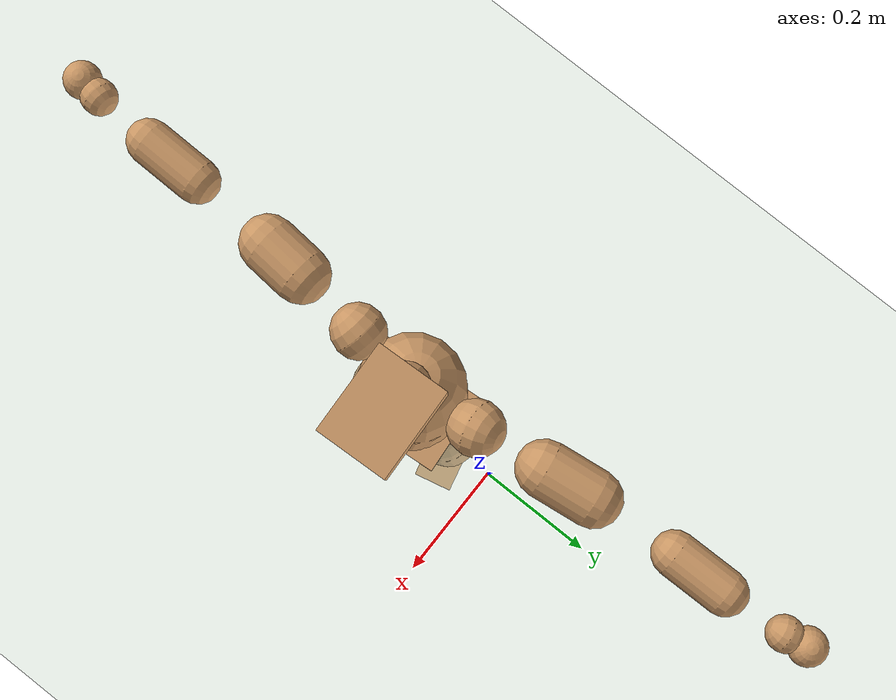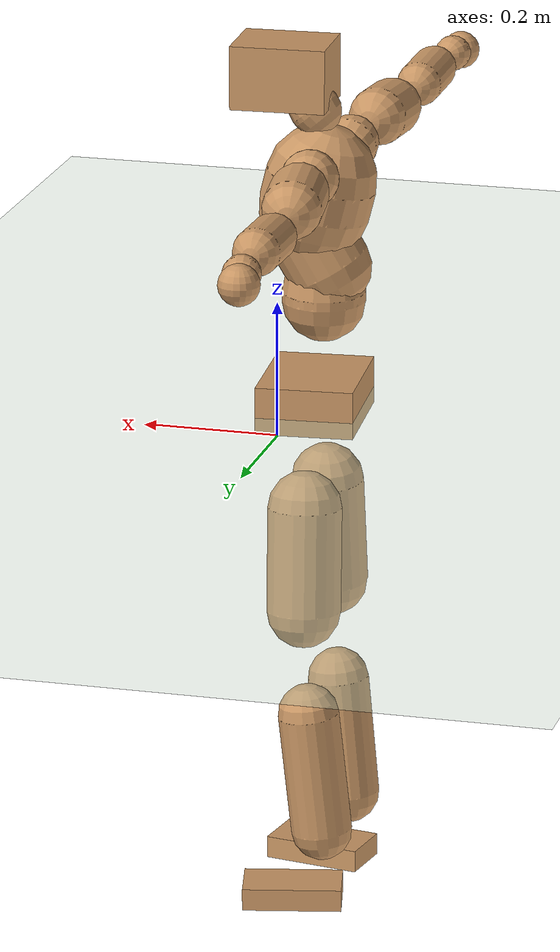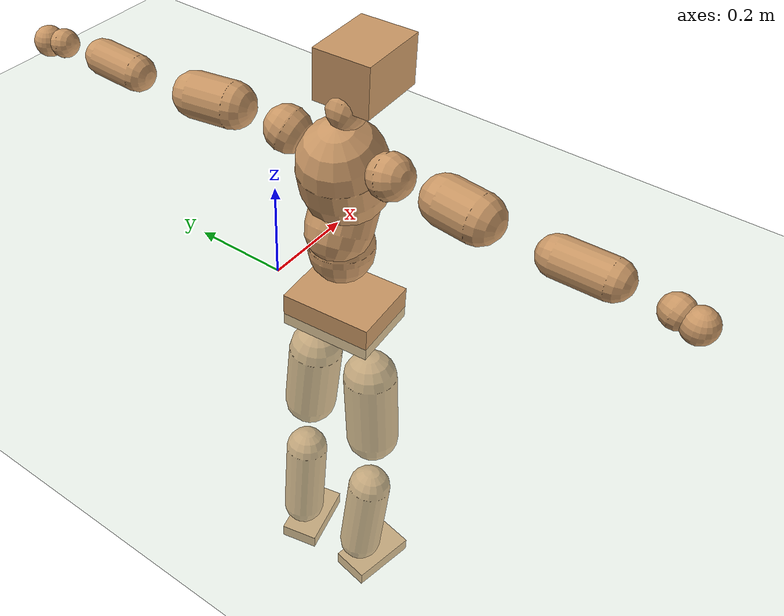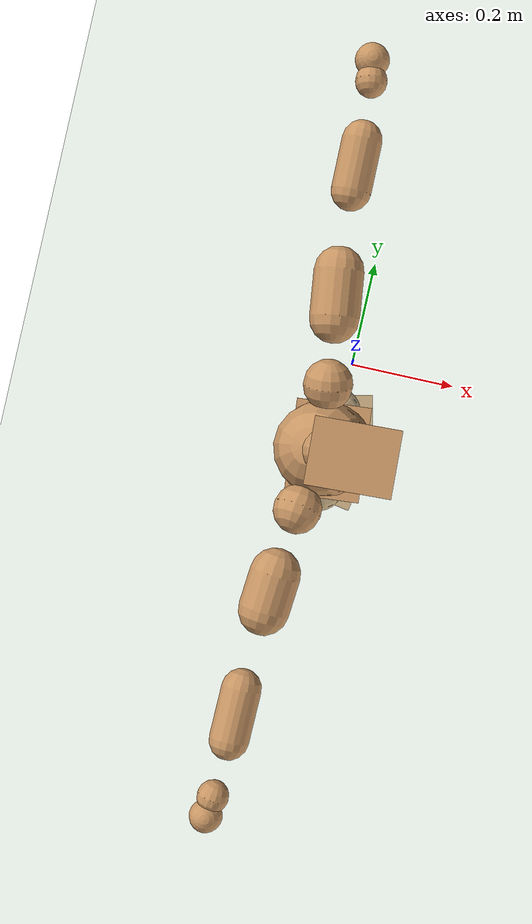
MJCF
<mujoco model="humanoid">
  <compiler coordinate="local" angle="radian"/>
  <default>
    <joint damping="0.0" armature="0.01" stiffness="0.0" limited="true"/>
    <geom conaffinity="1" condim="3" contype="7" margin="0.001" rgba="0.8 0.6 .4 1"/>
  </default>
  <asset>
    <texture type="skybox" builtin="gradient" rgb1=".4 .5 .6" rgb2="0 0 0" width="100" height="100"/>
    <texture builtin="flat" height="1278" mark="cross" markrgb="1 1 1" name="texgeom" random="0.01" rgb1="0.8 0.6 0.4" rgb2="0.8 0.6 0.4" type="cube" width="127"/>
    <texture builtin="checker" height="100" name="texplane" rgb1="0 0 0" rgb2="0.8 0.8 0.8" type="2d" width="100"/>
    <material name="MatPlane" reflectance="0.5" shininess="1" specular="1" texrepeat="60 60" texture="texplane"/>
    <material name="geom" texture="texgeom" texuniform="true"/>
  </asset>
  <worldbody>
    <light cutoff="100" diffuse="1 1 1" dir="-0 0 -1.3" directional="true" exponent="1" pos="0 0 1.3" specular=".1 .1 .1"/>
    <geom conaffinity="1" condim="3" name="floor" pos="0 0 0" rgba="0.8 0.9 0.8 1" size="100 100 .2" type="plane" material="MatPlane"/>
    <body name="Pelvis" pos="-0.0044 -0.1736 0.0198">
      <freejoint name="Pelvis"/>
      <geom type="box" contype="1" conaffinity="1" density="5359.375331" pos="-0.0050 -0.0004 -0.0112" size="0.0724 0.0921 0.0355" quat="0.9992 0.0000 0.0000 0.0401" name="Pelvis"/>
      <body name="L_Hip" pos="-0.0069 0.0602 -0.0785">
        <joint name="L_Hip_x" type="hinge" pos="0 0 0" axis="1 0 0" stiffness="1600" damping="160" armature="0.02" range="-180.0000 180.0000"/>
        <joint name="L_Hip_y" type="hinge" pos="0 0 0" axis="0 1 0" stiffness="1600" damping="160" armature="0.02" range="-180.0000 180.0000"/>
        <joint name="L_Hip_z" type="hinge" pos="0 0 0" axis="0 0 1" stiffness="1600" damping="160" armature="0.02" range="-180.0000 180.0000"/>
        <geom type="capsule" contype="1" conaffinity="1" density="2040.816327" size="0.0548" fromto="-0.0009 0.0072 -0.0845 -0.0027 0.0206 -0.2412" name="L_Hip"/>
        <body name="L_Knee" pos="-0.0036 0.0279 -0.3257">
          <joint name="L_Knee_x" type="hinge" pos="0 0 0" axis="1 0 0" stiffness="1600" damping="160" armature="0.02" range="-180.0000 180.0000"/>
          <joint name="L_Knee_y" type="hinge" pos="0 0 0" axis="0 1 0" stiffness="1600" damping="160" armature="0.02" range="-180.0000 180.0000"/>
          <joint name="L_Knee_z" type="hinge" pos="0 0 0" axis="0 0 1" stiffness="1600" damping="160" armature="0.02" range="-180.0000 180.0000"/>
          <geom type="capsule" contype="1" conaffinity="1" density="1234.567901" size="0.0457" fromto="-0.0078 -0.0019 -0.0753 -0.0269 -0.0065 -0.2585" name="L_Knee"/>
          <body name="L_Ankle" pos="-0.0348 -0.0084 -0.3338">
            <joint name="L_Ankle_x" type="hinge" pos="0 0 0" axis="1 0 0" stiffness="1600" damping="160" armature="0.02" range="-180.0000 180.0000"/>
            <joint name="L_Ankle_y" type="hinge" pos="0 0 0" axis="0 1 0" stiffness="1600" damping="160" armature="0.02" range="-180.0000 180.0000"/>
            <joint name="L_Ankle_z" type="hinge" pos="0 0 0" axis="0 0 1" stiffness="1600" damping="160" armature="0.02" range="-180.0000 180.0000"/>
            <geom type="box" contype="1" conaffinity="1" density="1000.000038" pos="0.0501 0.0114 -0.0238" size="0.0738 0.0417 0.0166" quat="0.9938 0.0000 0.0000 0.1116" name="L_Ankle"/>
            <body name="L_Toe" pos="0.1001 0.0228 -0.0475">
              <joint name="L_Toe_x" type="hinge" pos="0 0 0" axis="1 0 0" stiffness="1000" damping="100" armature="0.02" range="-180.0000 180.0000"/>
              <joint name="L_Toe_y" type="hinge" pos="0 0 0" axis="0 1 0" stiffness="1000" damping="100" armature="0.02" range="-180.0000 180.0000"/>
              <joint name="L_Toe_z" type="hinge" pos="0 0 0" axis="0 0 1" stiffness="1000" damping="100" armature="0.02" range="-180.0000 180.0000"/>
              <geom type="box" contype="1" conaffinity="1" density="8279207.905573" pos="0.0000 0.0000 0.0245" size="0.0008 0.0021 0.0009" quat="0.9929 0.0000 0.0000 0.1187" name="L_Toe"/>
            </body>
          </body>
        </body>
      </body>
      <body name="R_Hip" pos="-0.0047 -0.0599 -0.0781">
        <joint name="R_Hip_x" type="hinge" pos="0 0 0" axis="1 0 0" stiffness="1600" damping="160" armature="0.02" range="-180.0000 180.0000"/>
        <joint name="R_Hip_y" type="hinge" pos="0 0 0" axis="0 1 0" stiffness="1600" damping="160" armature="0.02" range="-180.0000 180.0000"/>
        <joint name="R_Hip_z" type="hinge" pos="0 0 0" axis="0 0 1" stiffness="1600" damping="160" armature="0.02" range="-180.0000 180.0000"/>
        <geom type="capsule" contype="1" conaffinity="1" density="2040.816327" size="0.0543" fromto="-0.0016 -0.0078 -0.0839 -0.0046 -0.0230 -0.2464" name="R_Hip"/>
        <body name="R_Knee" pos="-0.0062 -0.0308 -0.3303">
          <joint name="R_Knee_x" type="hinge" pos="0 0 0" axis="1 0 0" stiffness="1600" damping="160" armature="0.02" range="-180.0000 180.0000"/>
          <joint name="R_Knee_y" type="hinge" pos="0 0 0" axis="0 1 0" stiffness="1600" damping="160" armature="0.02" range="-180.0000 180.0000"/>
          <joint name="R_Knee_z" type="hinge" pos="0 0 0" axis="0 0 1" stiffness="1600" damping="160" armature="0.02" range="-180.0000 180.0000"/>
          <geom type="capsule" contype="1" conaffinity="1" density="1234.567901" size="0.0459" fromto="-0.0076 0.0024 -0.0755 -0.0258 0.0080 -0.2567" name="R_Knee"/>
          <body name="R_Ankle" pos="-0.0334 0.0104 -0.3322">
            <joint name="R_Ankle_x" type="hinge" pos="0 0 0" axis="1 0 0" stiffness="1600" damping="160" armature="0.02" range="-180.0000 180.0000"/>
            <joint name="R_Ankle_y" type="hinge" pos="0 0 0" axis="0 1 0" stiffness="1600" damping="160" armature="0.02" range="-180.0000 180.0000"/>
            <joint name="R_Ankle_z" type="hinge" pos="0 0 0" axis="0 0 1" stiffness="1600" damping="160" armature="0.02" range="-180.0000 180.0000"/>
            <geom type="box" contype="1" conaffinity="1" density="999.999987" pos="0.0511 -0.0090 -0.0195" size="0.0734 0.0408 0.0166" quat="0.9962 0.0000 0.0000 -0.0873" name="R_Ankle"/>
            <body name="R_Toe" pos="0.1022 -0.0181 -0.039">
              <joint name="R_Toe_x" type="hinge" pos="0 0 0" axis="1 0 0" stiffness="1000" damping="100" armature="0.02" range="-180.0000 180.0000"/>
              <joint name="R_Toe_y" type="hinge" pos="0 0 0" axis="0 1 0" stiffness="1000" damping="100" armature="0.02" range="-180.0000 180.0000"/>
              <joint name="R_Toe_z" type="hinge" pos="0 0 0" axis="0 0 1" stiffness="1000" damping="100" armature="0.02" range="-180.0000 180.0000"/>
              <geom type="box" contype="1" conaffinity="1" density="8379419.882387" pos="0.0000 0.0000 0.0212" size="0.0008 0.0021 0.0009" quat="0.9971 0.0000 0.0000 -0.0763" name="R_Toe"/>
            </body>
          </body>
        </body>
      </body>
      <body name="Torso" pos="-0.0182 -0.0027 0.0894">
        <joint name="Torso_x" type="hinge" pos="0 0 0" axis="1 0 0" stiffness="2000" damping="200" armature="0.02" range="-180.0000 180.0000"/>
        <joint name="Torso_y" type="hinge" pos="0 0 0" axis="0 1 0" stiffness="2000" damping="200" armature="0.02" range="-180.0000 180.0000"/>
        <joint name="Torso_z" type="hinge" pos="0 0 0" axis="0 0 1" stiffness="2000" damping="200" armature="0.02" range="-180.0000 180.0000"/>
        <geom type="capsule" contype="1" conaffinity="1" density="2040.816327" size="0.0624" fromto="-0.0006 0.0023 0.0624 -0.0005 0.0018 0.0486" name="Torso"/>
        <body name="Spine" pos="-0.0011 0.0041 0.1109">
          <joint name="Spine_x" type="hinge" pos="0 0 0" axis="1 0 0" stiffness="2000" damping="200" armature="0.02" range="-180.0000 180.0000"/>
          <joint name="Spine_y" type="hinge" pos="0 0 0" axis="0 1 0" stiffness="2000" damping="200" armature="0.02" range="-180.0000 180.0000"/>
          <joint name="Spine_z" type="hinge" pos="0 0 0" axis="0 0 1" stiffness="2000" damping="200" armature="0.02" range="-180.0000 180.0000"/>
          <geom type="capsule" contype="1" conaffinity="1" density="2040.816327" size="0.0629" fromto="0.0308 0.0047 0.0546 -0.0075 -0.0011 -0.0132" name="Spine"/>
          <body name="Chest" pos="0.0233 0.0036 0.0414">
            <joint name="Chest_x" type="hinge" pos="0 0 0" axis="1 0 0" stiffness="2000" damping="200" armature="0.02" range="-180.0000 180.0000"/>
            <joint name="Chest_y" type="hinge" pos="0 0 0" axis="0 1 0" stiffness="2000" damping="200" armature="0.02" range="-180.0000 180.0000"/>
            <joint name="Chest_z" type="hinge" pos="0 0 0" axis="0 0 1" stiffness="2000" damping="200" armature="0.02" range="-180.0000 180.0000"/>
            <geom type="capsule" contype="1" conaffinity="1" density="2040.816327" size="0.0821" fromto="-0.0200 -0.0011 0.0796 -0.0090 -0.0005 0.0359" name="Chest"/>
            <body name="Neck" pos="-0.0311 -0.0032 0.1581">
              <joint name="Neck_x" type="hinge" pos="0 0 0" axis="1 0 0" stiffness="1000" damping="100" armature="0.02" range="-180.0000 180.0000"/>
              <joint name="Neck_y" type="hinge" pos="0 0 0" axis="0 1 0" stiffness="1000" damping="100" armature="0.02" range="-180.0000 180.0000"/>
              <joint name="Neck_z" type="hinge" pos="0 0 0" axis="0 0 1" stiffness="1000" damping="100" armature="0.02" range="-180.0000 180.0000"/>
              <geom type="capsule" contype="1" conaffinity="1" density="1000" size="0.0372" fromto="0.0240 0.0000 0.0284 0.0194 0.0000 0.0230" name="Neck"/>
              <body name="Head" pos="0.0435 0.0001 0.0514">
                <joint name="Head_x" type="hinge" pos="0 0 0" axis="1 0 0" stiffness="1000" damping="100" armature="0.02" range="-180.0000 180.0000"/>
                <joint name="Head_y" type="hinge" pos="0 0 0" axis="0 1 0" stiffness="1000" damping="100" armature="0.02" range="-180.0000 180.0000"/>
                <joint name="Head_z" type="hinge" pos="0 0 0" axis="0 0 1" stiffness="1000" damping="100" armature="0.02" range="-180.0000 180.0000"/>
                <geom type="box" contype="1" conaffinity="1" density="2250.000101" pos="0.0227 0.0010 0.0267" size="0.0701 0.055 0.0471" quat="0.9997 0.0000 0.0000 0.0226" name="Head"/>
              </body>
            </body>
            <body name="L_Thorax" pos="-0.0265 0.0684 0.095">
              <joint name="L_Thorax_x" type="hinge" pos="0 0 0" axis="1 0 0" stiffness="1000" damping="100" armature="0.02" range="-180.0000 180.0000"/>
              <joint name="L_Thorax_y" type="hinge" pos="0 0 0" axis="0 1 0" stiffness="1000" damping="100" armature="0.02" range="-180.0000 180.0000"/>
              <joint name="L_Thorax_z" type="hinge" pos="0 0 0" axis="0 0 1" stiffness="1000" damping="100" armature="0.02" range="-180.0000 180.0000"/>
              <geom type="capsule" contype="1" conaffinity="1" density="1000" size="0.0426" fromto="-0.0049 0.0397 0.0148 -0.0046 0.0376 0.0140" name="L_Thorax"/>
              <body name="L_Shoulder" pos="-0.0095 0.0773 0.0287">
                <joint name="L_Shoulder_x" type="hinge" pos="0 0 0" axis="1 0 0" stiffness="1000" damping="100" armature="0.02" range="-720.0000 720.0000"/>
                <joint name="L_Shoulder_y" type="hinge" pos="0 0 0" axis="0 1 0" stiffness="1000" damping="100" armature="0.02" range="-720.0000 720.0000"/>
                <joint name="L_Shoulder_z" type="hinge" pos="0 0 0" axis="0 0 1" stiffness="1000" damping="100" armature="0.02" range="-720.0000 720.0000"/>
                <geom type="capsule" contype="1" conaffinity="1" density="1000" size="0.0431" fromto="-0.0093 0.0724 -0.0031 -0.0194 0.1515 -0.0064" name="L_Shoulder"/>
                <body name="L_Elbow" pos="-0.0287 0.2239 -0.0095">
                  <joint name="L_Elbow_x" type="hinge" pos="0 0 0" axis="1 0 0" stiffness="1000" damping="100" armature="0.02" range="-720.0000 720.0000"/>
                  <joint name="L_Elbow_y" type="hinge" pos="0 0 0" axis="0 1 0" stiffness="1000" damping="100" armature="0.02" range="-720.0000 720.0000"/>
                  <joint name="L_Elbow_z" type="hinge" pos="0 0 0" axis="0 0 1" stiffness="1000" damping="100" armature="0.02" range="-720.0000 720.0000"/>
                  <geom type="capsule" contype="1" conaffinity="1" density="1000" size="0.0341" fromto="-0.0006 0.0641 0.0024 -0.0013 0.1517 0.0057" name="L_Elbow"/>
                  <body name="L_Wrist" pos="-0.0019 0.2157 0.0081">
                    <joint name="L_Wrist_x" type="hinge" pos="0 0 0" axis="1 0 0" stiffness="600" damping="60" armature="0.02" range="-180.0000 180.0000"/>
                    <joint name="L_Wrist_y" type="hinge" pos="0 0 0" axis="0 1 0" stiffness="600" damping="60" armature="0.02" range="-180.0000 180.0000"/>
                    <joint name="L_Wrist_z" type="hinge" pos="0 0 0" axis="0 0 1" stiffness="600" damping="60" armature="0.02" range="-180.0000 180.0000"/>
                    <geom type="capsule" contype="1" conaffinity="1" density="1000" size="0.0272" fromto="-0.0060 0.0353 -0.0043 -0.0063 0.0372 -0.0046" name="L_Wrist"/>
                    <body name="L_Hand" pos="-0.0123 0.0725 -0.0089">
                      <joint name="L_Hand_x" type="hinge" pos="0 0 0" axis="1 0 0" stiffness="600" damping="60" armature="0.02" range="-180.0000 180.0000"/>
                      <joint name="L_Hand_y" type="hinge" pos="0 0 0" axis="0 1 0" stiffness="600" damping="60" armature="0.02" range="-180.0000 180.0000"/>
                      <joint name="L_Hand_z" type="hinge" pos="0 0 0" axis="0 0 1" stiffness="600" damping="60" armature="0.02" range="-180.0000 180.0000"/>
                      <geom type="sphere" contype="1" conaffinity="1" density="1000" size="0.0294" pos="0.0000 0.0000 0.0000" name="L_Hand"/>
                    </body>
                  </body>
                </body>
              </body>
            </body>
            <body name="R_Thorax" pos="-0.0293 -0.0698 0.0933">
              <joint name="R_Thorax_x" type="hinge" pos="0 0 0" axis="1 0 0" stiffness="1000" damping="100" armature="0.02" range="-180.0000 180.0000"/>
              <joint name="R_Thorax_y" type="hinge" pos="0 0 0" axis="0 1 0" stiffness="1000" damping="100" armature="0.02" range="-180.0000 180.0000"/>
              <joint name="R_Thorax_z" type="hinge" pos="0 0 0" axis="0 0 1" stiffness="1000" damping="100" armature="0.02" range="-180.0000 180.0000"/>
              <geom type="capsule" contype="1" conaffinity="1" density="1000" size="0.0416" fromto="-0.0060 -0.0393 0.0126 -0.0063 -0.0412 0.0132" name="R_Thorax"/>
              <body name="R_Shoulder" pos="-0.0122 -0.0804 0.0258">
                <joint name="R_Shoulder_x" type="hinge" pos="0 0 0" axis="1 0 0" stiffness="1000" damping="100" armature="0.02" range="-720.0000 720.0000"/>
                <joint name="R_Shoulder_y" type="hinge" pos="0 0 0" axis="0 1 0" stiffness="1000" damping="100" armature="0.02" range="-720.0000 720.0000"/>
                <joint name="R_Shoulder_z" type="hinge" pos="0 0 0" axis="0 0 1" stiffness="1000" damping="100" armature="0.02" range="-720.0000 720.0000"/>
                <geom type="capsule" contype="1" conaffinity="1" density="1000" size="0.0437" fromto="-0.0064 -0.0734 -0.0016 -0.0119 -0.1376 -0.0030" name="R_Shoulder"/>
                <body name="R_Elbow" pos="-0.0183 -0.211 -0.0046">
                  <joint name="R_Elbow_x" type="hinge" pos="0 0 0" axis="1 0 0" stiffness="1000" damping="100" armature="0.02" range="-720.0000 720.0000"/>
                  <joint name="R_Elbow_y" type="hinge" pos="0 0 0" axis="0 1 0" stiffness="1000" damping="100" armature="0.02" range="-720.0000 720.0000"/>
                  <joint name="R_Elbow_z" type="hinge" pos="0 0 0" axis="0 0 1" stiffness="1000" damping="100" armature="0.02" range="-720.0000 720.0000"/>
                  <geom type="capsule" contype="1" conaffinity="1" density="1000" size="0.034" fromto="-0.0010 -0.0639 0.0022 -0.0024 -0.1528 0.0053" name="R_Elbow"/>
                  <body name="R_Wrist" pos="-0.0034 -0.2167 0.0075">
                    <joint name="R_Wrist_x" type="hinge" pos="0 0 0" axis="1 0 0" stiffness="600" damping="60" armature="0.02" range="-180.0000 180.0000"/>
                    <joint name="R_Wrist_y" type="hinge" pos="0 0 0" axis="0 1 0" stiffness="600" damping="60" armature="0.02" range="-180.0000 180.0000"/>
                    <joint name="R_Wrist_z" type="hinge" pos="0 0 0" axis="0 0 1" stiffness="600" damping="60" armature="0.02" range="-180.0000 180.0000"/>
                    <geom type="capsule" contype="1" conaffinity="1" density="1000" size="0.0272" fromto="-0.0044 -0.0342 -0.0031 -0.0047 -0.0361 -0.0033" name="R_Wrist"/>
                    <body name="R_Hand" pos="-0.0091 -0.0703 -0.0064">
                      <joint name="R_Hand_x" type="hinge" pos="0 0 0" axis="1 0 0" stiffness="600" damping="60" armature="0.02" range="-180.0000 180.0000"/>
                      <joint name="R_Hand_y" type="hinge" pos="0 0 0" axis="0 1 0" stiffness="600" damping="60" armature="0.02" range="-180.0000 180.0000"/>
                      <joint name="R_Hand_z" type="hinge" pos="0 0 0" axis="0 0 1" stiffness="600" damping="60" armature="0.02" range="-180.0000 180.0000"/>
                      <geom type="sphere" contype="1" conaffinity="1" density="1000" size="0.0285" pos="0.0000 0.0000 0.0000" name="R_Hand"/>
                    </body>
                  </body>
                </body>
              </body>
            </body>
          </body>
        </body>
      </body>
    </body>
  </worldbody>
  <actuator>
    <motor name="L_Hip_x" joint="L_Hip_x" gear="500"/>
    <motor name="L_Hip_y" joint="L_Hip_y" gear="500"/>
    <motor name="L_Hip_z" joint="L_Hip_z" gear="500"/>
    <motor name="L_Knee_x" joint="L_Knee_x" gear="500"/>
    <motor name="L_Knee_y" joint="L_Knee_y" gear="500"/>
    <motor name="L_Knee_z" joint="L_Knee_z" gear="500"/>
    <motor name="L_Ankle_x" joint="L_Ankle_x" gear="500"/>
    <motor name="L_Ankle_y" joint="L_Ankle_y" gear="500"/>
    <motor name="L_Ankle_z" joint="L_Ankle_z" gear="500"/>
    <motor name="L_Toe_x" joint="L_Toe_x" gear="500"/>
    <motor name="L_Toe_y" joint="L_Toe_y" gear="500"/>
    <motor name="L_Toe_z" joint="L_Toe_z" gear="500"/>
    <motor name="R_Hip_x" joint="R_Hip_x" gear="500"/>
    <motor name="R_Hip_y" joint="R_Hip_y" gear="500"/>
    <motor name="R_Hip_z" joint="R_Hip_z" gear="500"/>
    <motor name="R_Knee_x" joint="R_Knee_x" gear="500"/>
    <motor name="R_Knee_y" joint="R_Knee_y" gear="500"/>
    <motor name="R_Knee_z" joint="R_Knee_z" gear="500"/>
    <motor name="R_Ankle_x" joint="R_Ankle_x" gear="500"/>
    <motor name="R_Ankle_y" joint="R_Ankle_y" gear="500"/>
    <motor name="R_Ankle_z" joint="R_Ankle_z" gear="500"/>
    <motor name="R_Toe_x" joint="R_Toe_x" gear="500"/>
    <motor name="R_Toe_y" joint="R_Toe_y" gear="500"/>
    <motor name="R_Toe_z" joint="R_Toe_z" gear="500"/>
    <motor name="Torso_x" joint="Torso_x" gear="500"/>
    <motor name="Torso_y" joint="Torso_y" gear="500"/>
    <motor name="Torso_z" joint="Torso_z" gear="500"/>
    <motor name="Spine_x" joint="Spine_x" gear="500"/>
    <motor name="Spine_y" joint="Spine_y" gear="500"/>
    <motor name="Spine_z" joint="Spine_z" gear="500"/>
    <motor name="Chest_x" joint="Chest_x" gear="500"/>
    <motor name="Chest_y" joint="Chest_y" gear="500"/>
    <motor name="Chest_z" joint="Chest_z" gear="500"/>
    <motor name="Neck_x" joint="Neck_x" gear="500"/>
    <motor name="Neck_y" joint="Neck_y" gear="500"/>
    <motor name="Neck_z" joint="Neck_z" gear="500"/>
    <motor name="Head_x" joint="Head_x" gear="500"/>
    <motor name="Head_y" joint="Head_y" gear="500"/>
    <motor name="Head_z" joint="Head_z" gear="500"/>
    <motor name="L_Thorax_x" joint="L_Thorax_x" gear="500"/>
    <motor name="L_Thorax_y" joint="L_Thorax_y" gear="500"/>
    <motor name="L_Thorax_z" joint="L_Thorax_z" gear="500"/>
    <motor name="L_Shoulder_x" joint="L_Shoulder_x" gear="500"/>
    <motor name="L_Shoulder_y" joint="L_Shoulder_y" gear="500"/>
    <motor name="L_Shoulder_z" joint="L_Shoulder_z" gear="500"/>
    <motor name="L_Elbow_x" joint="L_Elbow_x" gear="500"/>
    <motor name="L_Elbow_y" joint="L_Elbow_y" gear="500"/>
    <motor name="L_Elbow_z" joint="L_Elbow_z" gear="500"/>
    <motor name="L_Wrist_x" joint="L_Wrist_x" gear="500"/>
    <motor name="L_Wrist_y" joint="L_Wrist_y" gear="500"/>
    <motor name="L_Wrist_z" joint="L_Wrist_z" gear="500"/>
    <motor name="L_Hand_x" joint="L_Hand_x" gear="500"/>
    <motor name="L_Hand_y" joint="L_Hand_y" gear="500"/>
    <motor name="L_Hand_z" joint="L_Hand_z" gear="500"/>
    <motor name="R_Thorax_x" joint="R_Thorax_x" gear="500"/>
    <motor name="R_Thorax_y" joint="R_Thorax_y" gear="500"/>
    <motor name="R_Thorax_z" joint="R_Thorax_z" gear="500"/>
    <motor name="R_Shoulder_x" joint="R_Shoulder_x" gear="500"/>
    <motor name="R_Shoulder_y" joint="R_Shoulder_y" gear="500"/>
    <motor name="R_Shoulder_z" joint="R_Shoulder_z" gear="500"/>
    <motor name="R_Elbow_x" joint="R_Elbow_x" gear="500"/>
    <motor name="R_Elbow_y" joint="R_Elbow_y" gear="500"/>
    <motor name="R_Elbow_z" joint="R_Elbow_z" gear="500"/>
    <motor name="R_Wrist_x" joint="R_Wrist_x" gear="500"/>
    <motor name="R_Wrist_y" joint="R_Wrist_y" gear="500"/>
    <motor name="R_Wrist_z" joint="R_Wrist_z" gear="500"/>
    <motor name="R_Hand_x" joint="R_Hand_x" gear="500"/>
    <motor name="R_Hand_y" joint="R_Hand_y" gear="500"/>
    <motor name="R_Hand_z" joint="R_Hand_z" gear="500"/>
  </actuator>
  <contact>
    <exclude body1="Torso" body2="Chest"/>
    <exclude body1="Head" body2="Chest"/>
    <exclude body1="R_Knee" body2="R_Toe"/>
    <exclude body1="R_Knee" body2="L_Ankle"/>
    <exclude body1="R_Knee" body2="L_Toe"/>
    <exclude body1="L_Knee" body2="L_Toe"/>
    <exclude body1="L_Knee" body2="R_Ankle"/>
    <exclude body1="L_Knee" body2="R_Toe"/>
    <exclude body1="L_Shoulder" body2="Chest"/>
    <exclude body1="R_Shoulder" body2="Chest"/>
  </contact>
  <sensor/>
  <size njmax="700" nconmax="700"/>
</mujoco>
